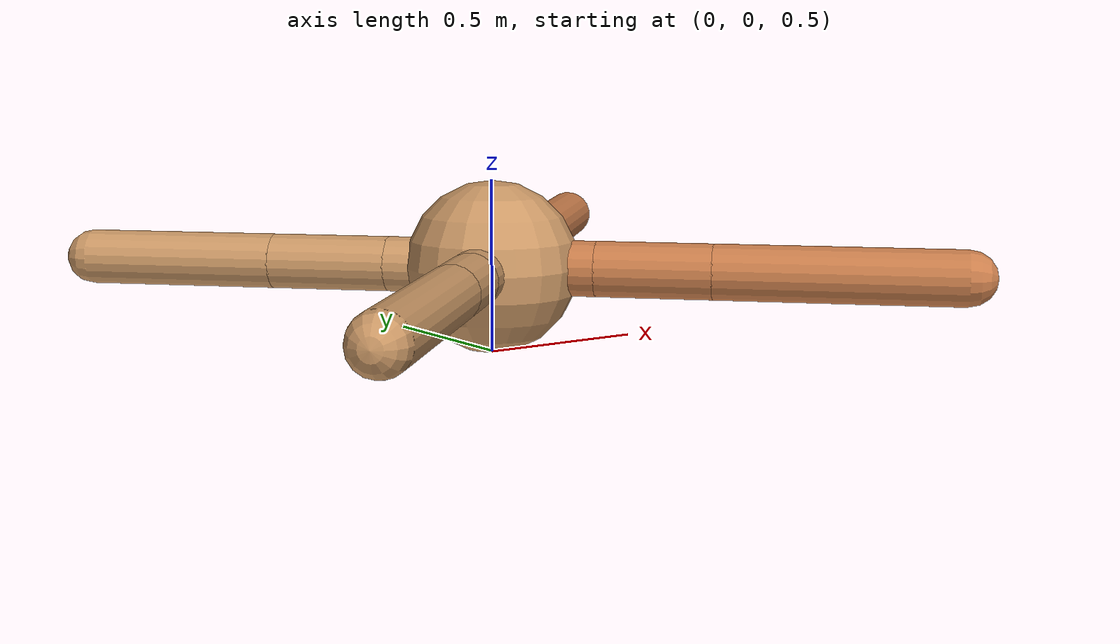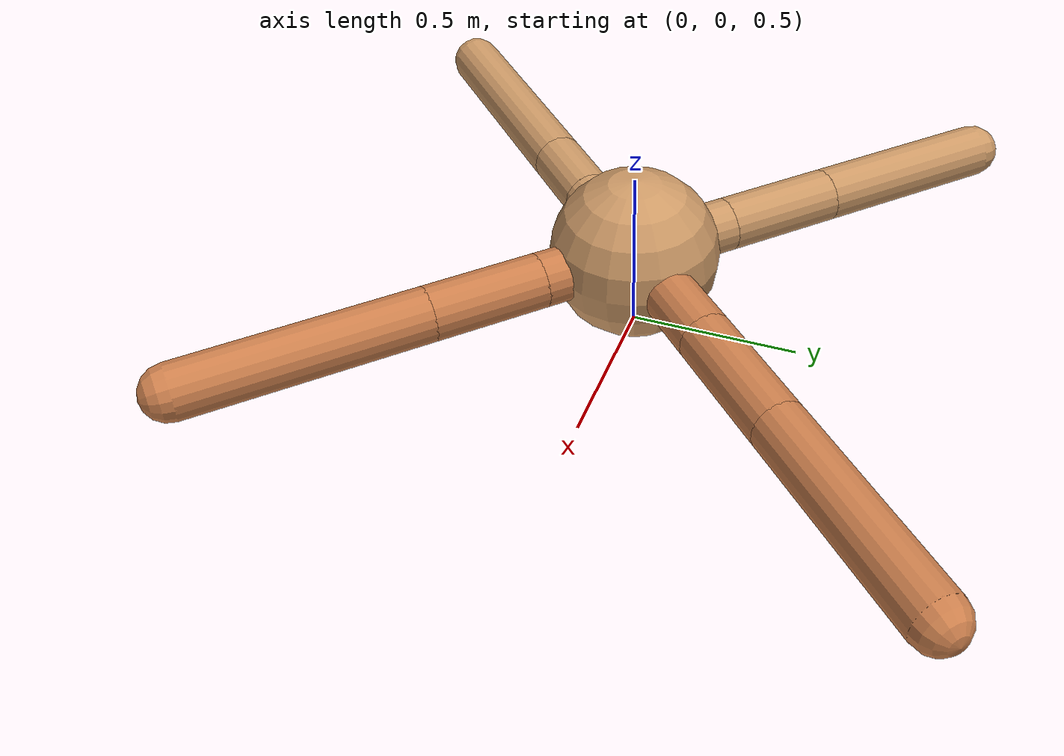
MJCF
<mujoco model="ant">
  <compiler angle="degree" coordinate="local" inertiafromgeom="true" />
  <option integrator="RK4" timestep="0.01" />
  <custom>
    <numeric data="0.0 0.0 0.55 1.0 0.0 0.0 0.0 0.0 1.0 0.0 -1.0 0.0 -1.0 0.0 1.0" name="init_qpos" />
  </custom>
  <default>
    <joint armature="1" damping="1" limited="true" />
    <geom conaffinity="0" condim="3" density="5.0" friction="1.5 0.1 0.1" margin="0.01" rgba="0.8 0.6 0.4 1" />
  </default>
  <worldbody>
    <body name="torso" pos="0 0 0.75">
      <geom name="torso_geom" pos="0 0 0" size="0.25" type="sphere" />

      <body name="front_left_leg" pos="0 0 0">
        <geom fromto="0.0 0.0 0.0 0.2985298202295123 0.2985298202295123 0.0" name="aux_1_geom" size="0.08" type="capsule" rgba=".8 .5 .3 1" />
        <body name="aux_1" pos="0.2985298202295123 0.2985298202295123 0.0">
          <joint axis="0 0 1" name="hip_1" pos="0.0 0.0 0.0" range="-40 40" type="hinge" />
          <geom fromto="0.0 0.0 0.0 0.2612307729751341 0.2612307729751341 0.0" name="left_leg_geom" size="0.08" type="capsule" rgba=".8 .5 .3 1" />
          <body pos="0.2612307729751341 0.2612307729751341 0.0" name="front_left_foot">
            <joint axis="-1 1 0" name="ankle_1" pos="0.0 0.0 0.0" range="30 100" type="hinge" />
            <geom fromto="0.0 0.0 0.0 0.45710747396534057 0.45710747396534057 0.0" name="left_ankle_geom" size="0.08" type="capsule" rgba=".8 .5 .3 1" />
          </body>
        </body>
      </body>
      <body name="front_right_leg" pos="0 0 0">
        <geom fromto="0.0 0.0 0.0 -0.21803343450312088 0.21803343450312088 0.0" name="aux_2_geom" size="0.08" type="capsule" />
        <body name="aux_2" pos="-0.21803343450312088 0.21803343450312088 0.0">
          <joint axis="0 0 1" name="hip_2" pos="0.0 0.0 0.0" range="-40 40" type="hinge" />
          <geom fromto="0.0 0.0 0.0 -0.24626878673224428 0.24626878673224428 0.0" name="right_leg_geom" size="0.08" type="capsule" />
          <body pos="-0.24626878673224428 0.24626878673224428 0.0" name="front_right_foot">
            <joint axis="1 1 0" name="ankle_2" pos="0.0 0.0 0.0" range="-100 -30" type="hinge" />
            <geom fromto="0.0 0.0 0.0 -0.4008380444075559 0.4008380444075559 0.0" name="right_ankle_geom" size="0.08" type="capsule" />
          </body>
        </body>
      </body>
      <body name="left_back_leg" pos="0 0 0">
        <geom fromto="0.0 0.0 0.0 -0.21956241788164613 -0.21956241788164613 0.0" name="aux_3_geom" size="0.08" type="capsule" />
        <body name="aux_3" pos="-0.21956241788164613 -0.21956241788164613 0.0">
          <joint axis="0 0 1" name="hip_3" pos="0.0 0.0 0.0" range="-40 40" type="hinge" />
          <geom fromto="0.0 0.0 0.0 -0.1646225881601306 -0.1646225881601306 0.0" name="back_leg_geom" size="0.08" type="capsule" />
          <body pos="-0.1646225881601306 -0.1646225881601306 0.0" name="left_back_foot">
            <joint axis="-1 1 0" name="ankle_3" pos="0.0 0.0 0.0" range="-100 -30" type="hinge" />
            <geom fromto="0.0 0.0 0.0 -0.5062924675855313 -0.5062924675855313 0.0" name="third_ankle_geom" size="0.08" type="capsule" />
          </body>
        </body>
      </body>
      <body name="right_back_leg" pos="0 0 0">
        <geom fromto="0.0 0.0 0.0 0.2136945822010249 -0.2136945822010249 0.0" name="aux_4_geom" size="0.08" type="capsule" rgba=".8 .5 .3 1" />
        <body name="aux_4" pos="0.2136945822010249 -0.2136945822010249 0.0">
          <joint axis="0 0 1" name="hip_4" pos="0.0 0.0 0.0" range="-40 40" type="hinge" />
          <geom fromto="0.0 0.0 0.0 0.23551623374624883 -0.23551623374624883 0.0" name="rightback_leg_geom" size="0.08" type="capsule" rgba=".8 .5 .3 1" />
          <body pos="0.23551623374624883 -0.23551623374624883 0.0" name="right_back_foot">
            <joint axis="1 1 0" name="ankle_4" pos="0.0 0.0 0.0" range="30 100" type="hinge" />
            <geom fromto="0.0 0.0 0.0 0.4963782387830225 -0.4963782387830225 0.0" name="fourth_ankle_geom" size="0.08" type="capsule" rgba=".8 .5 .3 1" />
          </body>
        </body>
      </body>
    </body>
  </worldbody>
  <actuator>
    <motor ctrllimited="true" ctrlrange="-1.0 1.0" joint="hip_4" gear="150" />
    <motor ctrllimited="true" ctrlrange="-1.0 1.0" joint="ankle_4" gear="150" />
    <motor ctrllimited="true" ctrlrange="-1.0 1.0" joint="hip_1" gear="150" />
    <motor ctrllimited="true" ctrlrange="-1.0 1.0" joint="ankle_1" gear="150" />
    <motor ctrllimited="true" ctrlrange="-1.0 1.0" joint="hip_2" gear="150" />
    <motor ctrllimited="true" ctrlrange="-1.0 1.0" joint="ankle_2" gear="150" />
    <motor ctrllimited="true" ctrlrange="-1.0 1.0" joint="hip_3" gear="150" />
    <motor ctrllimited="true" ctrlrange="-1.0 1.0" joint="ankle_3" gear="150" />
  </actuator>
</mujoco>
